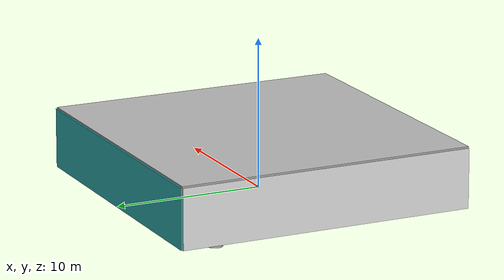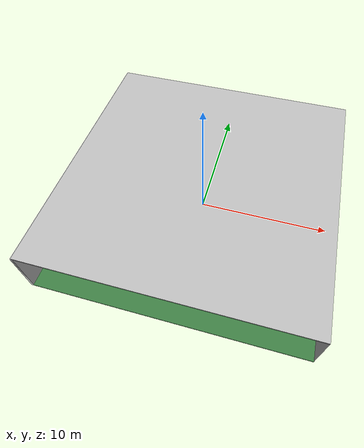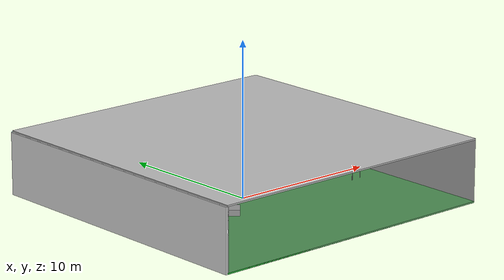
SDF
<sdf version="1.4">
 <world name="default">
  <physics type="ode">
   <max_step_size>0.001</max_step_size>
   <real_time_factor>1</real_time_factor>
   <real_time_update_rate>1000</real_time_update_rate>
   <gravity>0 0 -9.8</gravity>
  </physics>
  <scene><ambient>0.4 0.4 0.4 1</ambient><background>0.7 0.7 0.7 1</background><shadows>1</shadows></scene>
  <model name="Surrounding">
   <static>1</static>
   <link name="Ceiling">
    <collision name="Ceiling_Collision"><geometry><box><size>20 20 0.1</size></box></geometry></collision>
    <visual name="Ceiling_Visual">
     <geometry><box><size>20 20 0.1</size></box></geometry>
     <material>
      <script><uri>file://media/materials/scripts/gazebo.material</uri><name>Gazebo/LightOff</name></script>
     </material>
    </visual>
    <pose>0 0 4.05 0 0 0</pose>
   </link>
   <link name="Wall_South">
    <collision name="Wall_South_Collision">
     <geometry><box><size>20 0 4</size></box></geometry>
     <pose>0 0 2 0 -0 0</pose>
    </collision>
    <visual name="Wall_South_Visual">
     <pose>0 0 2 0 -0 0</pose>
     <geometry><box><size>20 0 4</size></box></geometry>
     <material>
      <script><uri>file://media/materials/scripts/gazebo.material</uri><name>Gazebo/GreyTransparent</name></script>
     </material>
    </visual>
    <velocity_decay><linear>0</linear><angular>0</angular></velocity_decay>
    <pose>0 -10 0 0 -0 0</pose>
   </link>
   <link name="Wall_East">
    <collision name="Wall_21_Collision">
     <geometry><box><size>20 0 4</size></box></geometry>
     <pose>0 0 2 0 -0 0</pose>
    </collision>
    <visual name="Wall_21_Visual">
     <pose>0 0 2 0 -0 0</pose>
     <geometry><box><size>20 0 4</size></box></geometry>
     <material>
      <script><uri>file://media/materials/scripts/gazebo.material</uri><name>Gazebo/LightOff</name></script>
     </material>
    </visual>
    <velocity_decay><linear>0</linear><angular>0</angular></velocity_decay>
    <pose>10 0 0 0 -0 1.5708</pose>
   </link>
   <link name="Wall_North">
    <collision name="Wall_22_Collision">
     <geometry><box><size>20 0.2 4</size></box></geometry>
     <pose>0 0 2 0 -0 0</pose>
    </collision>
    <visual name="Wall_22_Visual">
     <pose>0 0 2 0 -0 0</pose>
     <geometry><box><size>20 0.2 4</size></box></geometry>
     <material>
      <script><uri>file://media/materials/scripts/gazebo.material</uri><name>Gazebo/Turquoise</name></script>
     </material>
    </visual>
    <velocity_decay><linear>0</linear><angular>0</angular></velocity_decay>
    <pose>0 10 0 0 -0 0</pose>
   </link>
   <link name="Wall_West">
    <collision name="Wall_23_Collision">
     <geometry><box><size>20 0.2 4</size></box></geometry>
     <pose>0 0 2 0 -0 0</pose>
    </collision>
    <visual name="Wall_23_Visual">
     <pose>0 0 2 0 -0 0</pose>
     <geometry><box><size>20 0.2 4</size></box></geometry>
     <material>
      <script><uri>file://media/materials/scripts/gazebo.material</uri><name>Gazebo/White</name></script>
     </material>
    </visual>
    <velocity_decay><linear>0</linear><angular>0</angular></velocity_decay>
    <pose>-10 0 0 0 0 -1.5708</pose>
   </link>
   <link name="Ground_link">
    <collision name="collision">
     <pose>0 0 .05 0 -0 0</pose>
     <geometry><box><size>20 20 0.1</size></box></geometry>
    </collision>
    <visual name="visual">
     <pose>0 0 .05 0 -0 0</pose>
     <geometry><box><size>20 20 0.1</size></box></geometry>
     <material>
      <script><uri>file://media/materials/scripts/gazebo.material</uri><name>Gazebo/GreenGlow</name></script>
     </material>
    </visual>
   </link>
   <static>1</static>
  </model>
  <spherical_coordinates>
   <surface_model>EARTH_WGS84</surface_model>
   <latitude_deg>0</latitude_deg>
   <longitude_deg>0</longitude_deg>
   <elevation>0</elevation>
   <heading_deg>0</heading_deg>
  </spherical_coordinates>
  <light name="lightball_0" type="diffuse">
   <diffuse>0.8 0.8 0.8 1</diffuse>
   <specular>0.2 0.2 0.2 1</specular>
   <attenuation>
    <range>100</range>
    <constant>0.7</constant>
    <linear>0.01</linear>
    <quadratic>0.001</quadratic>
   </attenuation>
   <direction>-0.5 0.1 -0.9</direction>
   <pose>1.07198235674 -0.576347163364 3.25172990763 0 0 0</pose>
  </light>
  <light name="lightball_1" type="diffuse">
   <diffuse>0.8 0.8 0.8 1</diffuse>
   <specular>0.2 0.2 0.2 1</specular>
   <attenuation>
    <range>100</range>
    <constant>0.7</constant>
    <linear>0.01</linear>
    <quadratic>0.001</quadratic>
   </attenuation>
   <direction>-0.5 0.1 -0.9</direction>
   <pose>9.20412431692 -4.25134756251 0.548164711702 0 0 0</pose>
  </light>
  <light name="lightball_2" type="diffuse">
   <diffuse>0.8 0.8 0.8 1</diffuse>
   <specular>0.2 0.2 0.2 1</specular>
   <attenuation>
    <range>100</range>
    <constant>0.7</constant>
    <linear>0.01</linear>
    <quadratic>0.001</quadratic>
   </attenuation>
   <direction>-0.5 0.1 -0.9</direction>
   <pose>-0.82916133949 3.09043801084 0.823929591377 0 0 0</pose>
  </light>
  <light name="lightball_3" type="diffuse">
   <diffuse>0.8 0.8 0.8 1</diffuse>
   <specular>0.2 0.2 0.2 1</specular>
   <attenuation>
    <range>100</range>
    <constant>0.7</constant>
    <linear>0.01</linear>
    <quadratic>0.001</quadratic>
   </attenuation>
   <direction>-0.5 0.1 -0.9</direction>
   <pose>6.98527122081 -8.81234784458 3.60871686047 0 0 0</pose>
  </light>
  <light name="lightball_4" type="diffuse">
   <diffuse>0.8 0.8 0.8 1</diffuse>
   <specular>0.2 0.2 0.2 1</specular>
   <attenuation>
    <range>100</range>
    <constant>0.7</constant>
    <linear>0.01</linear>
    <quadratic>0.001</quadratic>
   </attenuation>
   <direction>-0.5 0.1 -0.9</direction>
   <pose>9.43725552759 5.60733770163 1.8727955818 0 0 0</pose>
  </light>
  <light name="lightball_5" type="diffuse">
   <diffuse>0.8 0.8 0.8 1</diffuse>
   <specular>0.2 0.2 0.2 1</specular>
   <attenuation>
    <range>100</range>
    <constant>0.7</constant>
    <linear>0.01</linear>
    <quadratic>0.001</quadratic>
   </attenuation>
   <direction>-0.5 0.1 -0.9</direction>
   <pose>9.42800139405 1.65623638833 3.87020823394 0 0 0</pose>
  </light>
  <light name="lightball_6" type="diffuse">
   <diffuse>0.8 0.8 0.8 1</diffuse>
   <specular>0.2 0.2 0.2 1</specular>
   <attenuation>
    <range>100</range>
    <constant>0.7</constant>
    <linear>0.01</linear>
    <quadratic>0.001</quadratic>
   </attenuation>
   <direction>-0.5 0.1 -0.9</direction>
   <pose>-6.99714076043 8.48053359926 3.19864357709 0 0 0</pose>
  </light>
  <light name="lightball_7" type="diffuse">
   <diffuse>0.8 0.8 0.8 1</diffuse>
   <specular>0.2 0.2 0.2 1</specular>
   <attenuation>
    <range>100</range>
    <constant>0.7</constant>
    <linear>0.01</linear>
    <quadratic>0.001</quadratic>
   </attenuation>
   <direction>-0.5 0.1 -0.9</direction>
   <pose>-4.55986545071 1.1701425489 2.23506199361 0 0 0</pose>
  </light>
  <include>
   <uri>model://textured_shapes</uri>
   <pose>-7.2730868064 7.80222486162 0 0 0 2.00432036077</pose>
  </include>
  <include>
   <uri>model://textured_shapes</uri>
   <pose>-3.8088330122 -1.0543331265 0 0 0 0.836056796009</pose>
  </include>
  <include>
   <uri>model://textured_shapes</uri>
   <pose>3.98200223441 2.04564389123 0 0 0 1.10051890168</pose>
  </include>
  <include><uri>model://table</uri><pose>7.75958538189 -1.2112738638 0 0 0 1.67320003004</pose></include>
 </world>
</sdf>

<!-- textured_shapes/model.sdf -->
<sdf version="1.6">
  <model name="textured_shapes">
    <pose>0 0 0.5 0 0 0</pose>
    <link name="box">
      <pose>0 -1.5 0 0 0 0</pose>
      <collision name="collision">
        <geometry>
          <box>
            <size>1 1 1</size>
          </box>
        </geometry>
      </collision>
      <visual name="visual">
        <geometry>
          <box>
            <size>1 1 1</size>
          </box>
        </geometry>
        <material>
          <script>
            <uri>model://../model_source/models/textured_shapes/materials/scripts</uri>
            <uri>model://../model_source/models/textured_shapes/materials/textures</uri>
            <name>TexturedShape/Squares</name>
          </script>
        </material>
      </visual>
    </link>
    <link name="sphere">
      <collision name="collision">
        <geometry>
          <sphere>
            <radius>0.5</radius>
          </sphere>
        </geometry>
      </collision>
      <visual name="visual">
        <geometry>
          <sphere>
            <radius>0.5</radius>
          </sphere>
        </geometry>
        <material>
          <script>
            <uri>model://../model_source/models/textured_shapes/materials/scripts</uri>
            <uri>model://../model_source/models/textured_shapes/materials/textures</uri>
            <name>TexturedShape/Squares</name>
          </script>
        </material>
      </visual>
    </link>
    <link name="cylinder">
      <pose>0 1.5 0 0 0 0</pose>
      <collision name="collision">
        <geometry>
          <cylinder>
            <radius>0.5</radius>
            <length>1</length>
          </cylinder>
        </geometry>
      </collision>
      <visual name="visual">
        <geometry>
          <cylinder>
            <radius>0.5</radius>
            <length>1</length>
          </cylinder>
        </geometry>
        <material>
          <script>
            <uri>model://../model_source/models/textured_shapes/materials/scripts</uri>
            <uri>model://../model_source/models/textured_shapes/materials/textures</uri>
            <name>TexturedShape/Squares</name>
          </script>
        </material>
      </visual>
    </link>
  </model>
</sdf>

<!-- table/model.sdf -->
<sdf version="1.5">
  <model name="table">
    <static>true</static>
    <link name="link">
      <collision name="surface">
        <pose>0 0 1.0 0 0 0</pose>
        <geometry>
          <box>
            <size>1.5 0.8 0.03</size>
          </box>
        </geometry>
        <surface>
          <friction>
            <ode>
              <mu>0.6</mu>
              <mu2>0.6</mu2>
            </ode>
          </friction>
        </surface>
      </collision>
      <visual name="visual1">
        <pose>0 0 1.0 0 0 0</pose>
        <geometry>
          <box>
            <size>1.5 0.8 0.03</size>
          </box>
        </geometry>
        <material>
          <script>
            <uri>model://media/materials/scripts/gazebo.material</uri>
            <name>Gazebo/Wood</name>
          </script>
        </material>
      </visual>
      <collision name="front_left_leg">
        <pose>0.68 0.38 0.5 0 0 0</pose>
        <geometry>
          <cylinder>
            <radius>0.02</radius>
            <length>1.0</length>
          </cylinder>
        </geometry>
      </collision>
      <visual name="front_left_leg">
        <pose>0.68 0.38 0.5 0 0 0</pose>
        <geometry>
          <cylinder>
            <radius>0.02</radius>
            <length>1.0</length>
          </cylinder>
        </geometry>
        <material>
          <script>
            <uri>model://media/materials/scripts/gazebo.material</uri>
            <name>Gazebo/Grey</name>
          </script>
        </material>
      </visual>
      <collision name="front_right_leg">
        <pose>0.68 -0.38 0.5 0 0 0</pose>
        <geometry>
          <cylinder>
            <radius>0.02</radius>
            <length>1.0</length>
          </cylinder>
        </geometry>
      </collision>
      <visual name="front_right_leg">
        <pose>0.68 -0.38 0.5 0 0 0</pose>
        <geometry>
          <cylinder>
            <radius>0.02</radius>
            <length>1.0</length>
          </cylinder>
        </geometry>
        <material>
          <script>
            <uri>model://media/materials/scripts/gazebo.material</uri>
            <name>Gazebo/Grey</name>
          </script>
        </material>
      </visual>
      <collision name="back_right_leg">
        <pose>-0.68 -0.38 0.5 0 0 0</pose>
        <geometry>
          <cylinder>
            <radius>0.02</radius>
            <length>1.0</length>
          </cylinder>
        </geometry>
      </collision>
      <visual name="back_right_leg">
        <pose>-0.68 -0.38 0.5 0 0 0</pose>
        <geometry>
          <cylinder>
            <radius>0.02</radius>
            <length>1.0</length>
          </cylinder>
        </geometry>
        <material>
          <script>
            <uri>model://media/materials/scripts/gazebo.material</uri>
            <name>Gazebo/Grey</name>
          </script>
        </material>
      </visual>
      <collision name="back_left_leg">
        <pose>-0.68 0.38 0.5 0 0 0</pose>
        <geometry>
          <cylinder>
            <radius>0.02</radius>
            <length>1.0</length>
          </cylinder>
        </geometry>
      </collision>
      <visual name="back_left_leg">
        <pose>-0.68 0.38 0.5 0 0 0</pose>
        <geometry>
          <cylinder>
            <radius>0.02</radius>
            <length>1.0</length>
          </cylinder>
        </geometry>
        <material>
          <script>
            <uri>model://media/materials/scripts/gazebo.material</uri>
            <name>Gazebo/Grey</name>
          </script>
        </material>
      </visual>
    </link>
  </model>
</sdf>
